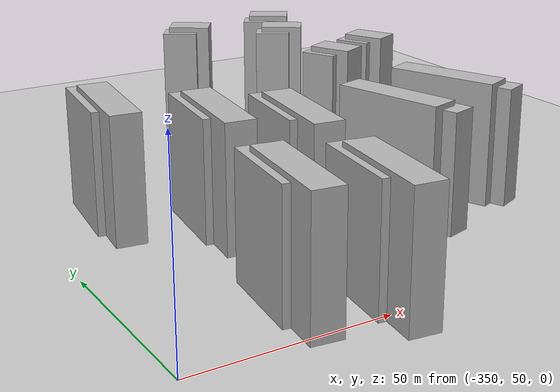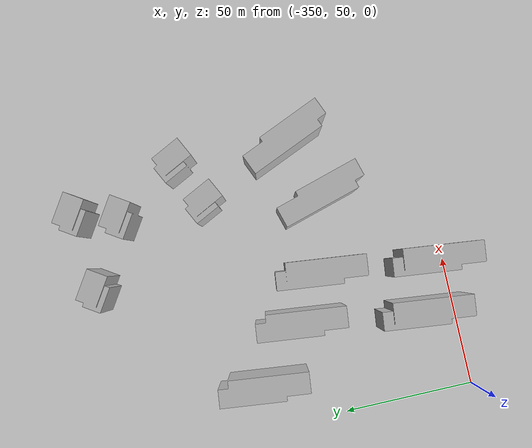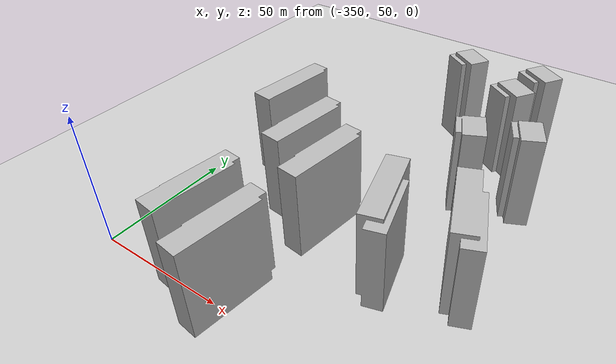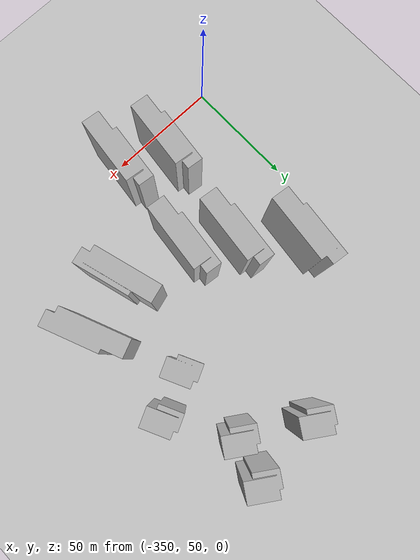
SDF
<sdf version="1.7">
 <world name="default">
  <model name="ground_plane">
   <static>1</static>
   <link name="link">
    <collision name="collision">
     <geometry><plane><normal>0 0 1</normal><size>100 100</size></plane></geometry>
     <surface><friction><ode><mu>100</mu><mu2>50</mu2></ode></friction></surface>
    </collision>
    <visual name="visual">
     <cast_shadows>0</cast_shadows>
     <geometry><plane><normal>0 0 1</normal><size>100 100</size></plane></geometry>
     <material>
      <script><uri>file://media/materials/scripts/gazebo.material</uri><name>Gazebo/Grey</name></script>
     </material>
    </visual>
   </link>
  </model>
  <model name="apartment1_1_clone_clone_2_clone_5_clone_4_clone_4_clone_clone_1_clone_6_clone_3_clone_clone_1">
   <static>1</static>
   <link name="link_0">
    <inertial>
     <mass>1</mass>
     <inertia>
      <ixx>0.166667</ixx>
      <ixy>0</ixy>
      <ixz>0</ixz>
      <iyy>0.166667</iyy>
      <iyz>0</iyz>
      <izz>0.166667</izz>
     </inertia>
    </inertial>
    <pose>1e-06 -0 0 0 -0 0</pose>
    <visual name="visual">
     <geometry>
      <mesh><uri>model://apartment1/scripts/apartment1.dae</uri><scale>0.2 0.2 0.3</scale></mesh>
     </geometry>
     <material>
      <lighting>1</lighting>
      <script><uri>model://apartment1/scripts/apartment1.jpg</uri><name>__default__</name></script>
      <shader type="pixel"/>
     </material>
    </visual>
    <collision name="collision">
     <geometry>
      <mesh><uri>model://apartment1/scripts/apartment1.dae</uri><scale>0.2 0.2 0.3</scale></mesh>
     </geometry>
     <surface>
      <friction>
       <ode><mu>1</mu><mu2>1</mu2><fdir1>0 0 0</fdir1><slip1>0</slip1><slip2>0</slip2></ode>
       <torsional>
        <coefficient>1</coefficient>
        <patch_radius>0</patch_radius>
        <surface_radius>0</surface_radius>
        <use_patch_radius>1</use_patch_radius>
        <ode><slip>0</slip></ode>
       </torsional>
      </friction>
      <bounce><restitution_coefficient>0</restitution_coefficient><threshold>1e+06</threshold></bounce>
      <contact>
       <collide_without_contact>0</collide_without_contact>
       <collide_without_contact_bitmask>1</collide_without_contact_bitmask>
       <collide_bitmask>1</collide_bitmask>
       <ode>
        <soft_cfm>0</soft_cfm>
        <soft_erp>0.2</soft_erp>
        <kp>1e+13</kp>
        <kd>1</kd>
        <max_vel>0.01</max_vel>
        <min_depth>0</min_depth>
       </ode>
       <bullet>
        <split_impulse>1</split_impulse>
        <split_impulse_penetration_threshold>-0.01</split_impulse_penetration_threshold>
        <soft_cfm>0</soft_cfm>
        <soft_erp>0.2</soft_erp>
        <kp>1e+13</kp>
        <kd>1</kd>
       </bullet>
      </contact>
     </surface>
    </collision>
   </link>
   <static>0</static>
   <pose>-280.274 181.654 0 0 -0 0.988081</pose>
  </model>
  <model name="apartment1_1_clone_clone_2_clone_5_clone_4_clone_4_clone_clone_1_clone_6_clone_3_clone_clone_2">
   <static>1</static>
   <link name="link_0">
    <inertial>
     <mass>1</mass>
     <inertia>
      <ixx>0.166667</ixx>
      <ixy>0</ixy>
      <ixz>0</ixz>
      <iyy>0.166667</iyy>
      <iyz>0</iyz>
      <izz>0.166667</izz>
     </inertia>
    </inertial>
    <pose>1e-06 -0 0 0 -0 0</pose>
    <visual name="visual">
     <geometry>
      <mesh><uri>model://apartment1/scripts/apartment1.dae</uri><scale>0.2 0.2 0.3</scale></mesh>
     </geometry>
     <material>
      <lighting>1</lighting>
      <script><uri>model://apartment1/scripts/apartment1.jpg</uri><name>__default__</name></script>
      <shader type="pixel"/>
     </material>
    </visual>
    <collision name="collision">
     <geometry>
      <mesh><uri>model://apartment1/scripts/apartment1.dae</uri><scale>0.2 0.2 0.3</scale></mesh>
     </geometry>
     <surface>
      <friction>
       <ode><mu>1</mu><mu2>1</mu2><fdir1>0 0 0</fdir1><slip1>0</slip1><slip2>0</slip2></ode>
       <torsional>
        <coefficient>1</coefficient>
        <patch_radius>0</patch_radius>
        <surface_radius>0</surface_radius>
        <use_patch_radius>1</use_patch_radius>
        <ode><slip>0</slip></ode>
       </torsional>
      </friction>
      <bounce><restitution_coefficient>0</restitution_coefficient><threshold>1e+06</threshold></bounce>
      <contact>
       <collide_without_contact>0</collide_without_contact>
       <collide_without_contact_bitmask>1</collide_without_contact_bitmask>
       <collide_bitmask>1</collide_bitmask>
       <ode>
        <soft_cfm>0</soft_cfm>
        <soft_erp>0.2</soft_erp>
        <kp>1e+13</kp>
        <kd>1</kd>
        <max_vel>0.01</max_vel>
        <min_depth>0</min_depth>
       </ode>
       <bullet>
        <split_impulse>1</split_impulse>
        <split_impulse_penetration_threshold>-0.01</split_impulse_penetration_threshold>
        <soft_cfm>0</soft_cfm>
        <soft_erp>0.2</soft_erp>
        <kp>1e+13</kp>
        <kd>1</kd>
       </bullet>
      </contact>
     </surface>
    </collision>
   </link>
   <static>0</static>
   <pose>-251.018 183.726 0 0 -0 0.988081</pose>
  </model>
  <model name="apartment1_1_clone_clone_2_clone_5_clone_4_clone_4_clone_clone_1_clone_6_clone_3_clone_clone_3">
   <static>1</static>
   <link name="link_0">
    <inertial>
     <mass>1</mass>
     <inertia>
      <ixx>0.166667</ixx>
      <ixy>0</ixy>
      <ixz>0</ixz>
      <iyy>0.166667</iyy>
      <iyz>0</iyz>
      <izz>0.166667</izz>
     </inertia>
    </inertial>
    <pose>1e-06 -0 0 0 -0 0</pose>
    <visual name="visual">
     <geometry>
      <mesh><uri>model://apartment1/scripts/apartment1.dae</uri><scale>0.2 0.2 0.3</scale></mesh>
     </geometry>
     <material>
      <lighting>1</lighting>
      <script><uri>model://apartment1/scripts/apartment1.jpg</uri><name>__default__</name></script>
      <shader type="pixel"/>
     </material>
    </visual>
    <collision name="collision">
     <geometry>
      <mesh><uri>model://apartment1/scripts/apartment1.dae</uri><scale>0.2 0.2 0.3</scale></mesh>
     </geometry>
     <surface>
      <friction>
       <ode><mu>1</mu><mu2>1</mu2><fdir1>0 0 0</fdir1><slip1>0</slip1><slip2>0</slip2></ode>
       <torsional>
        <coefficient>1</coefficient>
        <patch_radius>0</patch_radius>
        <surface_radius>0</surface_radius>
        <use_patch_radius>1</use_patch_radius>
        <ode><slip>0</slip></ode>
       </torsional>
      </friction>
      <bounce><restitution_coefficient>0</restitution_coefficient><threshold>1e+06</threshold></bounce>
      <contact>
       <collide_without_contact>0</collide_without_contact>
       <collide_without_contact_bitmask>1</collide_without_contact_bitmask>
       <collide_bitmask>1</collide_bitmask>
       <ode>
        <soft_cfm>0</soft_cfm>
        <soft_erp>0.2</soft_erp>
        <kp>1e+13</kp>
        <kd>1</kd>
        <max_vel>0.01</max_vel>
        <min_depth>0</min_depth>
       </ode>
       <bullet>
        <split_impulse>1</split_impulse>
        <split_impulse_penetration_threshold>-0.01</split_impulse_penetration_threshold>
        <soft_cfm>0</soft_cfm>
        <soft_erp>0.2</soft_erp>
        <kp>1e+13</kp>
        <kd>1</kd>
       </bullet>
      </contact>
     </surface>
    </collision>
   </link>
   <static>0</static>
   <pose>-255.861 167.467 0 0 -0 0.988081</pose>
  </model>
  <model name="apartment3_clone_8">
   <static>1</static>
   <link name="link_0">
    <inertial>
     <mass>1</mass>
     <inertia>
      <ixx>0.166667</ixx>
      <ixy>0</ixy>
      <ixz>0</ixz>
      <iyy>0.166667</iyy>
      <iyz>0</iyz>
      <izz>0.166667</izz>
     </inertia>
    </inertial>
    <pose>1e-06 -0 0 0 -0 0</pose>
    <visual name="visual">
     <geometry>
      <mesh><uri>model://apartment1/scripts/apartment1.dae</uri><scale>0.2 0.5 0.28</scale></mesh>
     </geometry>
     <material>
      <lighting>1</lighting>
      <script><uri>model://apartment1/scripts/apartment1.jpg</uri><name>__default__</name></script>
      <shader type="pixel"/>
     </material>
    </visual>
    <collision name="collision">
     <geometry>
      <mesh><uri>model://apartment1/scripts/apartment1.dae</uri><scale>0.2 0.5 0.28</scale></mesh>
     </geometry>
     <surface>
      <friction>
       <ode><mu>1</mu><mu2>1</mu2><fdir1>0 0 0</fdir1><slip1>0</slip1><slip2>0</slip2></ode>
       <torsional>
        <coefficient>1</coefficient>
        <patch_radius>0</patch_radius>
        <surface_radius>0</surface_radius>
        <use_patch_radius>1</use_patch_radius>
        <ode><slip>0</slip></ode>
       </torsional>
      </friction>
      <bounce><restitution_coefficient>0</restitution_coefficient><threshold>1e+06</threshold></bounce>
      <contact>
       <collide_without_contact>0</collide_without_contact>
       <collide_without_contact_bitmask>1</collide_without_contact_bitmask>
       <collide_bitmask>1</collide_bitmask>
       <ode>
        <soft_cfm>0</soft_cfm>
        <soft_erp>0.2</soft_erp>
        <kp>1e+13</kp>
        <kd>1</kd>
        <max_vel>0.01</max_vel>
        <min_depth>0</min_depth>
       </ode>
       <bullet>
        <split_impulse>1</split_impulse>
        <split_impulse_penetration_threshold>-0.01</split_impulse_penetration_threshold>
        <soft_cfm>0</soft_cfm>
        <soft_erp>0.2</soft_erp>
        <kp>1e+13</kp>
        <kd>1</kd>
       </bullet>
      </contact>
     </surface>
    </collision>
   </link>
   <static>0</static>
   <pose>-330.302 126.917 0 0 0 -0.11616</pose>
  </model>
  <model name="apartment3_clone_9">
   <static>1</static>
   <link name="link_0">
    <inertial>
     <mass>1</mass>
     <inertia>
      <ixx>0.166667</ixx>
      <ixy>0</ixy>
      <ixz>0</ixz>
      <iyy>0.166667</iyy>
      <iyz>0</iyz>
      <izz>0.166667</izz>
     </inertia>
    </inertial>
    <pose>1e-06 -0 0 0 -0 0</pose>
    <visual name="visual">
     <geometry>
      <mesh><uri>model://apartment1/scripts/apartment1.dae</uri><scale>0.2 0.5 0.28</scale></mesh>
     </geometry>
     <material>
      <lighting>1</lighting>
      <script><uri>model://apartment1/scripts/apartment1.jpg</uri><name>__default__</name></script>
      <shader type="pixel"/>
     </material>
    </visual>
    <collision name="collision">
     <geometry>
      <mesh><uri>model://apartment1/scripts/apartment1.dae</uri><scale>0.2 0.5 0.28</scale></mesh>
     </geometry>
     <surface>
      <friction>
       <ode><mu>1</mu><mu2>1</mu2><fdir1>0 0 0</fdir1><slip1>0</slip1><slip2>0</slip2></ode>
       <torsional>
        <coefficient>1</coefficient>
        <patch_radius>0</patch_radius>
        <surface_radius>0</surface_radius>
        <use_patch_radius>1</use_patch_radius>
        <ode><slip>0</slip></ode>
       </torsional>
      </friction>
      <bounce><restitution_coefficient>0</restitution_coefficient><threshold>1e+06</threshold></bounce>
      <contact>
       <collide_without_contact>0</collide_without_contact>
       <collide_without_contact_bitmask>1</collide_without_contact_bitmask>
       <collide_bitmask>1</collide_bitmask>
       <ode>
        <soft_cfm>0</soft_cfm>
        <soft_erp>0.2</soft_erp>
        <kp>1e+13</kp>
        <kd>1</kd>
        <max_vel>0.01</max_vel>
        <min_depth>0</min_depth>
       </ode>
       <bullet>
        <split_impulse>1</split_impulse>
        <split_impulse_penetration_threshold>-0.01</split_impulse_penetration_threshold>
        <soft_cfm>0</soft_cfm>
        <soft_erp>0.2</soft_erp>
        <kp>1e+13</kp>
        <kd>1</kd>
       </bullet>
      </contact>
     </surface>
    </collision>
   </link>
   <static>0</static>
   <pose>-309.968 108.083 0 0 0 -0.11616</pose>
  </model>
  <model name="apartment3_clone_10">
   <static>1</static>
   <link name="link_0">
    <inertial>
     <mass>1</mass>
     <inertia>
      <ixx>0.166667</ixx>
      <ixy>0</ixy>
      <ixz>0</ixz>
      <iyy>0.166667</iyy>
      <iyz>0</iyz>
      <izz>0.166667</izz>
     </inertia>
    </inertial>
    <pose>1e-06 -0 0 0 -0 0</pose>
    <visual name="visual">
     <geometry>
      <mesh><uri>model://apartment1/scripts/apartment1.dae</uri><scale>0.2 0.5 0.28</scale></mesh>
     </geometry>
     <material>
      <lighting>1</lighting>
      <script><uri>model://apartment1/scripts/apartment1.jpg</uri><name>__default__</name></script>
      <shader type="pixel"/>
     </material>
    </visual>
    <collision name="collision">
     <geometry>
      <mesh><uri>model://apartment1/scripts/apartment1.dae</uri><scale>0.2 0.5 0.28</scale></mesh>
     </geometry>
     <surface>
      <friction>
       <ode><mu>1</mu><mu2>1</mu2><fdir1>0 0 0</fdir1><slip1>0</slip1><slip2>0</slip2></ode>
       <torsional>
        <coefficient>1</coefficient>
        <patch_radius>0</patch_radius>
        <surface_radius>0</surface_radius>
        <use_patch_radius>1</use_patch_radius>
        <ode><slip>0</slip></ode>
       </torsional>
      </friction>
      <bounce><restitution_coefficient>0</restitution_coefficient><threshold>1e+06</threshold></bounce>
      <contact>
       <collide_without_contact>0</collide_without_contact>
       <collide_without_contact_bitmask>1</collide_without_contact_bitmask>
       <collide_bitmask>1</collide_bitmask>
       <ode>
        <soft_cfm>0</soft_cfm>
        <soft_erp>0.2</soft_erp>
        <kp>1e+13</kp>
        <kd>1</kd>
        <max_vel>0.01</max_vel>
        <min_depth>0</min_depth>
       </ode>
       <bullet>
        <split_impulse>1</split_impulse>
        <split_impulse_penetration_threshold>-0.01</split_impulse_penetration_threshold>
        <soft_cfm>0</soft_cfm>
        <soft_erp>0.2</soft_erp>
        <kp>1e+13</kp>
        <kd>1</kd>
       </bullet>
      </contact>
     </surface>
    </collision>
   </link>
   <static>0</static>
   <pose>-316.361 61.6442 0 0 0 -0.11616</pose>
  </model>
  <model name="apartment3_clone_11">
   <static>1</static>
   <link name="link_0">
    <inertial>
     <mass>1</mass>
     <inertia>
      <ixx>0.166667</ixx>
      <ixy>0</ixy>
      <ixz>0</ixz>
      <iyy>0.166667</iyy>
      <iyz>0</iyz>
      <izz>0.166667</izz>
     </inertia>
    </inertial>
    <pose>1e-06 -0 0 0 -0 0</pose>
    <visual name="visual">
     <geometry>
      <mesh><uri>model://apartment1/scripts/apartment1.dae</uri><scale>0.2 0.5 0.28</scale></mesh>
     </geometry>
     <material>
      <lighting>1</lighting>
      <script><uri>model://apartment1/scripts/apartment1.jpg</uri><name>__default__</name></script>
      <shader type="pixel"/>
     </material>
    </visual>
    <collision name="collision">
     <geometry>
      <mesh><uri>model://apartment1/scripts/apartment1.dae</uri><scale>0.2 0.5 0.28</scale></mesh>
     </geometry>
     <surface>
      <friction>
       <ode><mu>1</mu><mu2>1</mu2><fdir1>0 0 0</fdir1><slip1>0</slip1><slip2>0</slip2></ode>
       <torsional>
        <coefficient>1</coefficient>
        <patch_radius>0</patch_radius>
        <surface_radius>0</surface_radius>
        <use_patch_radius>1</use_patch_radius>
        <ode><slip>0</slip></ode>
       </torsional>
      </friction>
      <bounce><restitution_coefficient>0</restitution_coefficient><threshold>1e+06</threshold></bounce>
      <contact>
       <collide_without_contact>0</collide_without_contact>
       <collide_without_contact_bitmask>1</collide_without_contact_bitmask>
       <collide_bitmask>1</collide_bitmask>
       <ode>
        <soft_cfm>0</soft_cfm>
        <soft_erp>0.2</soft_erp>
        <kp>1e+13</kp>
        <kd>1</kd>
        <max_vel>0.01</max_vel>
        <min_depth>0</min_depth>
       </ode>
       <bullet>
        <split_impulse>1</split_impulse>
        <split_impulse_penetration_threshold>-0.01</split_impulse_penetration_threshold>
        <soft_cfm>0</soft_cfm>
        <soft_erp>0.2</soft_erp>
        <kp>1e+13</kp>
        <kd>1</kd>
       </bullet>
      </contact>
     </surface>
    </collision>
   </link>
   <static>0</static>
   <pose>-293.021 96.6787 0 0 0 -0.11616</pose>
  </model>
  <model name="apartment3_clone_12">
   <static>1</static>
   <link name="link_0">
    <inertial>
     <mass>1</mass>
     <inertia>
      <ixx>0.166667</ixx>
      <ixy>0</ixy>
      <ixz>0</ixz>
      <iyy>0.166667</iyy>
      <iyz>0</iyz>
      <izz>0.166667</izz>
     </inertia>
    </inertial>
    <pose>1e-06 -0 0 0 -0 0</pose>
    <visual name="visual">
     <geometry>
      <mesh><uri>model://apartment1/scripts/apartment1.dae</uri><scale>0.2 0.5 0.28</scale></mesh>
     </geometry>
     <material>
      <lighting>1</lighting>
      <script><uri>model://apartment1/scripts/apartment1.jpg</uri><name>__default__</name></script>
      <shader type="pixel"/>
     </material>
    </visual>
    <collision name="collision">
     <geometry>
      <mesh><uri>model://apartment1/scripts/apartment1.dae</uri><scale>0.2 0.5 0.28</scale></mesh>
     </geometry>
     <surface>
      <friction>
       <ode><mu>1</mu><mu2>1</mu2><fdir1>0 0 0</fdir1><slip1>0</slip1><slip2>0</slip2></ode>
       <torsional>
        <coefficient>1</coefficient>
        <patch_radius>0</patch_radius>
        <surface_radius>0</surface_radius>
        <use_patch_radius>1</use_patch_radius>
        <ode><slip>0</slip></ode>
       </torsional>
      </friction>
      <bounce><restitution_coefficient>0</restitution_coefficient><threshold>1e+06</threshold></bounce>
      <contact>
       <collide_without_contact>0</collide_without_contact>
       <collide_without_contact_bitmask>1</collide_without_contact_bitmask>
       <collide_bitmask>1</collide_bitmask>
       <ode>
        <soft_cfm>0</soft_cfm>
        <soft_erp>0.2</soft_erp>
        <kp>1e+13</kp>
        <kd>1</kd>
        <max_vel>0.01</max_vel>
        <min_depth>0</min_depth>
       </ode>
       <bullet>
        <split_impulse>1</split_impulse>
        <split_impulse_penetration_threshold>-0.01</split_impulse_penetration_threshold>
        <soft_cfm>0</soft_cfm>
        <soft_erp>0.2</soft_erp>
        <kp>1e+13</kp>
        <kd>1</kd>
       </bullet>
      </contact>
     </surface>
    </collision>
   </link>
   <static>0</static>
   <pose>-297.834 53.6124 0 0 0 -0.11616</pose>
  </model>
  <model name="apartment3_clone_14_clone_2_clone_1">
   <static>1</static>
   <link name="link_0">
    <inertial>
     <mass>1</mass>
     <inertia>
      <ixx>0.166667</ixx>
      <ixy>0</ixy>
      <ixz>0</ixz>
      <iyy>0.166667</iyy>
      <iyz>0</iyz>
      <izz>0.166667</izz>
     </inertia>
    </inertial>
    <pose>1e-06 -0 0 0 -0 0</pose>
    <visual name="visual">
     <geometry>
      <mesh><uri>model://apartment1/scripts/apartment1.dae</uri><scale>0.2 0.5 0.28</scale></mesh>
     </geometry>
     <material>
      <lighting>1</lighting>
      <script><uri>model://apartment1/scripts/apartment1.jpg</uri><name>__default__</name></script>
      <shader type="pixel"/>
     </material>
    </visual>
    <collision name="collision">
     <geometry>
      <mesh><uri>model://apartment1/scripts/apartment1.dae</uri><scale>0.2 0.5 0.28</scale></mesh>
     </geometry>
     <surface>
      <friction>
       <ode><mu>1</mu><mu2>1</mu2><fdir1>0 0 0</fdir1><slip1>0</slip1><slip2>0</slip2></ode>
       <torsional>
        <coefficient>1</coefficient>
        <patch_radius>0</patch_radius>
        <surface_radius>0</surface_radius>
        <use_patch_radius>1</use_patch_radius>
        <ode><slip>0</slip></ode>
       </torsional>
      </friction>
      <bounce><restitution_coefficient>0</restitution_coefficient><threshold>1e+06</threshold></bounce>
      <contact>
       <collide_without_contact>0</collide_without_contact>
       <collide_without_contact_bitmask>1</collide_without_contact_bitmask>
       <collide_bitmask>1</collide_bitmask>
       <ode>
        <soft_cfm>0</soft_cfm>
        <soft_erp>0.2</soft_erp>
        <kp>1e+13</kp>
        <kd>1</kd>
        <max_vel>0.01</max_vel>
        <min_depth>0</min_depth>
       </ode>
       <bullet>
        <split_impulse>1</split_impulse>
        <split_impulse_penetration_threshold>-0.01</split_impulse_penetration_threshold>
        <soft_cfm>0</soft_cfm>
        <soft_erp>0.2</soft_erp>
        <kp>1e+13</kp>
        <kd>1</kd>
       </bullet>
      </contact>
     </surface>
    </collision>
   </link>
   <static>0</static>
   <pose>-243.722 101.863 0 0 0 -2.74693</pose>
  </model>
  <model name="apartment3_clone_14_clone_2_clone_2">
   <static>1</static>
   <link name="link_0">
    <inertial>
     <mass>1</mass>
     <inertia>
      <ixx>0.166667</ixx>
      <ixy>0</ixy>
      <ixz>0</ixz>
      <iyy>0.166667</iyy>
      <iyz>0</iyz>
      <izz>0.166667</izz>
     </inertia>
    </inertial>
    <pose>1e-06 -0 0 0 -0 0</pose>
    <visual name="visual">
     <geometry>
      <mesh><uri>model://apartment1/scripts/apartment1.dae</uri><scale>0.2 0.5 0.28</scale></mesh>
     </geometry>
     <material>
      <lighting>1</lighting>
      <script><uri>model://apartment1/scripts/apartment1.jpg</uri><name>__default__</name></script>
      <shader type="pixel"/>
     </material>
    </visual>
    <collision name="collision">
     <geometry>
      <mesh><uri>model://apartment1/scripts/apartment1.dae</uri><scale>0.2 0.5 0.28</scale></mesh>
     </geometry>
     <surface>
      <friction>
       <ode><mu>1</mu><mu2>1</mu2><fdir1>0 0 0</fdir1><slip1>0</slip1><slip2>0</slip2></ode>
       <torsional>
        <coefficient>1</coefficient>
        <patch_radius>0</patch_radius>
        <surface_radius>0</surface_radius>
        <use_patch_radius>1</use_patch_radius>
        <ode><slip>0</slip></ode>
       </torsional>
      </friction>
      <bounce><restitution_coefficient>0</restitution_coefficient><threshold>1e+06</threshold></bounce>
      <contact>
       <collide_without_contact>0</collide_without_contact>
       <collide_without_contact_bitmask>1</collide_without_contact_bitmask>
       <collide_bitmask>1</collide_bitmask>
       <ode>
        <soft_cfm>0</soft_cfm>
        <soft_erp>0.2</soft_erp>
        <kp>1e+13</kp>
        <kd>1</kd>
        <max_vel>0.01</max_vel>
        <min_depth>0</min_depth>
       </ode>
       <bullet>
        <split_impulse>1</split_impulse>
        <split_impulse_penetration_threshold>-0.01</split_impulse_penetration_threshold>
        <soft_cfm>0</soft_cfm>
        <soft_erp>0.2</soft_erp>
        <kp>1e+13</kp>
        <kd>1</kd>
       </bullet>
      </contact>
     </surface>
    </collision>
   </link>
   <static>0</static>
   <pose>-266.864 93.9443 0 0 0 -2.86331</pose>
  </model>
  <model name="apartment1_1_clone_clone_2_clone_5_clone_3_clone">
   <static>1</static>
   <link name="link_0">
    <inertial>
     <mass>1</mass>
     <inertia>
      <ixx>0.166667</ixx>
      <ixy>0</ixy>
      <ixz>0</ixz>
      <iyy>0.166667</iyy>
      <iyz>0</iyz>
      <izz>0.166667</izz>
     </inertia>
    </inertial>
    <pose>1e-06 -0 0 0 -0 0</pose>
    <visual name="visual">
     <geometry>
      <mesh><uri>model://apartment1/scripts/apartment1.dae</uri><scale>0.2 0.2 0.3</scale></mesh>
     </geometry>
     <material>
      <lighting>1</lighting>
      <script><uri>model://apartment1/scripts/apartment1.jpg</uri><name>__default__</name></script>
      <shader type="pixel"/>
     </material>
    </visual>
    <collision name="collision">
     <geometry>
      <mesh><uri>model://apartment1/scripts/apartment1.dae</uri><scale>0.2 0.2 0.3</scale></mesh>
     </geometry>
     <surface>
      <friction>
       <ode><mu>1</mu><mu2>1</mu2><fdir1>0 0 0</fdir1><slip1>0</slip1><slip2>0</slip2></ode>
       <torsional>
        <coefficient>1</coefficient>
        <patch_radius>0</patch_radius>
        <surface_radius>0</surface_radius>
        <use_patch_radius>1</use_patch_radius>
        <ode><slip>0</slip></ode>
       </torsional>
      </friction>
      <bounce><restitution_coefficient>0</restitution_coefficient><threshold>1e+06</threshold></bounce>
      <contact>
       <collide_without_contact>0</collide_without_contact>
       <collide_without_contact_bitmask>1</collide_without_contact_bitmask>
       <collide_bitmask>1</collide_bitmask>
       <ode>
        <soft_cfm>0</soft_cfm>
        <soft_erp>0.2</soft_erp>
        <kp>1e+13</kp>
        <kd>1</kd>
        <max_vel>0.01</max_vel>
        <min_depth>0</min_depth>
       </ode>
       <bullet>
        <split_impulse>1</split_impulse>
        <split_impulse_penetration_threshold>-0.01</split_impulse_penetration_threshold>
        <soft_cfm>0</soft_cfm>
        <soft_erp>0.2</soft_erp>
        <kp>1e+13</kp>
        <kd>1</kd>
       </bullet>
      </contact>
     </surface>
    </collision>
   </link>
   <static>0</static>
   <pose>-257.429 134.774 0 0 -0 0.45325</pose>
  </model>
  <model name="apartment1_1_clone_clone_2_clone_5_clone_3_clone_0">
   <static>1</static>
   <link name="link_0">
    <inertial>
     <mass>1</mass>
     <inertia>
      <ixx>0.166667</ixx>
      <ixy>0</ixy>
      <ixz>0</ixz>
      <iyy>0.166667</iyy>
      <iyz>0</iyz>
      <izz>0.166667</izz>
     </inertia>
    </inertial>
    <pose>1e-06 -0 0 0 -0 0</pose>
    <visual name="visual">
     <geometry>
      <mesh><uri>model://apartment1/scripts/apartment1.dae</uri><scale>0.2 0.2 0.3</scale></mesh>
     </geometry>
     <material>
      <lighting>1</lighting>
      <script><uri>model://apartment1/scripts/apartment1.jpg</uri><name>__default__</name></script>
      <shader type="pixel"/>
     </material>
    </visual>
    <collision name="collision">
     <geometry>
      <mesh><uri>model://apartment1/scripts/apartment1.dae</uri><scale>0.2 0.2 0.3</scale></mesh>
     </geometry>
     <surface>
      <friction>
       <ode><mu>1</mu><mu2>1</mu2><fdir1>0 0 0</fdir1><slip1>0</slip1><slip2>0</slip2></ode>
       <torsional>
        <coefficient>1</coefficient>
        <patch_radius>0</patch_radius>
        <surface_radius>0</surface_radius>
        <use_patch_radius>1</use_patch_radius>
        <ode><slip>0</slip></ode>
       </torsional>
      </friction>
      <bounce><restitution_coefficient>0</restitution_coefficient><threshold>1e+06</threshold></bounce>
      <contact>
       <collide_without_contact>0</collide_without_contact>
       <collide_without_contact_bitmask>1</collide_without_contact_bitmask>
       <collide_bitmask>1</collide_bitmask>
       <ode>
        <soft_cfm>0</soft_cfm>
        <soft_erp>0.2</soft_erp>
        <kp>1e+13</kp>
        <kd>1</kd>
        <max_vel>0.01</max_vel>
        <min_depth>0</min_depth>
       </ode>
       <bullet>
        <split_impulse>1</split_impulse>
        <split_impulse_penetration_threshold>-0.01</split_impulse_penetration_threshold>
        <soft_cfm>0</soft_cfm>
        <soft_erp>0.2</soft_erp>
        <kp>1e+13</kp>
        <kd>1</kd>
       </bullet>
      </contact>
     </surface>
    </collision>
   </link>
   <static>0</static>
   <pose>-240.407 142.573 0 0 -0 0.45325</pose>
  </model>
 </world>
</sdf>
